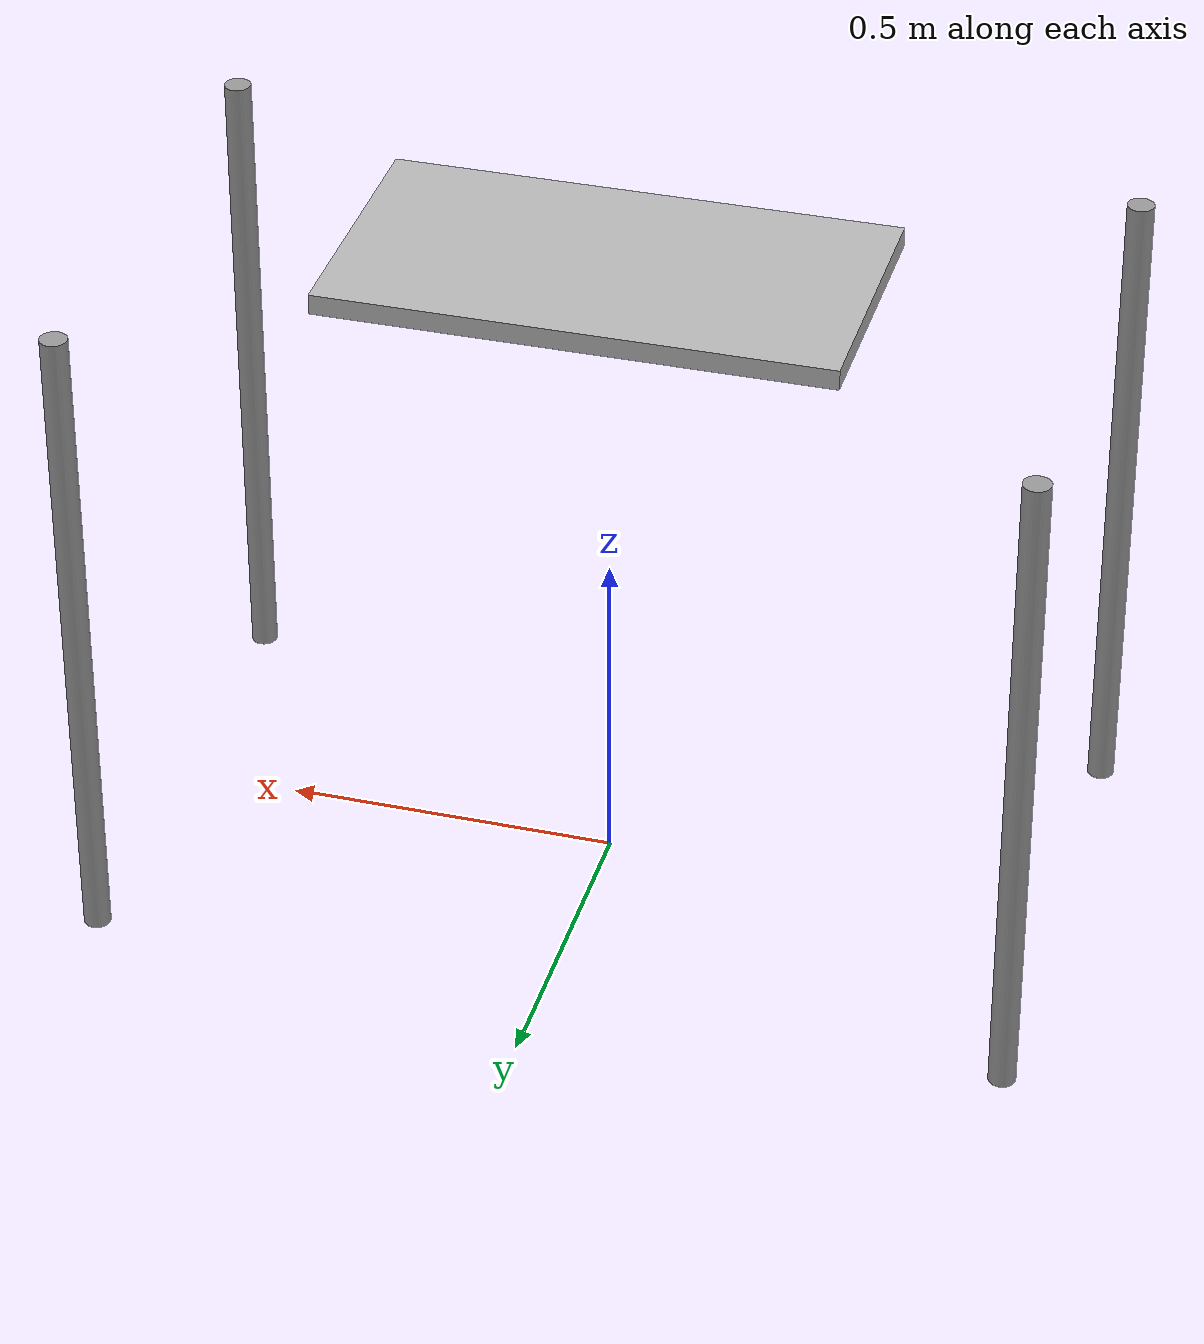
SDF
<?xml version="1.0" ?>
<sdf version="1.3">
  <model name="table">
    <static>true</static>
    <link name="link">
      <collision name="surface">
        <pose>0 0 1.0 0 0 0</pose>
        <geometry>
          <box>
            <size>0.75 0.4 0.03</size>
          </box>
        </geometry>
        <surface>
          <friction>
            <ode>
              <mu>0.6</mu>
              <mu2>0.6</mu2>
            </ode>
          </friction>
        </surface>
      </collision>
      <visual name="visual1">
        <pose>0 0 1.0 0 0 0</pose>
        <geometry>
          <box>
            <size>0.75 0.4 0.03</size>
          </box>
        </geometry>
        <material>
          <script>
            <uri>model://miro_table/materials/scripts</uri>
            <uri>model://miro_table/materials/textures</uri>
            <name>miro_table/Diffuse</name>
          </script>
        </material>
      </visual>
      <collision name="front_left_leg">
        <pose>0.68 0.38 0.5 0 0 0</pose>
        <geometry>
          <cylinder>
            <radius>0.02</radius>
            <length>1.0</length>
          </cylinder>
        </geometry>
      </collision>
      <visual name="front_left_leg">
        <pose>0.68 0.38 0.5 0 0 0</pose>
        <geometry>
          <cylinder>
            <radius>0.02</radius>
            <length>1.0</length>
          </cylinder>
        </geometry>
        <material>
          <script>
            <uri>file://media/materials/scripts/gazebo.material</uri>
            <name>Gazebo/Grey</name>
          </script>
        </material>
      </visual>
      <collision name="front_right_leg">
        <pose>0.68 -0.38 0.5 0 0 0</pose>
        <geometry>
          <cylinder>
            <radius>0.02</radius>
            <length>1.0</length>
          </cylinder>
        </geometry>
      </collision>
      <visual name="front_right_leg">
        <pose>0.68 -0.38 0.5 0 0 0</pose>
        <geometry>
          <cylinder>
            <radius>0.02</radius>
            <length>1.0</length>
          </cylinder>
        </geometry>
        <material>
          <script>
            <uri>file://media/materials/scripts/gazebo.material</uri>
            <name>Gazebo/Grey</name>
          </script>
        </material>
      </visual>
      <collision name="back_right_leg">
        <pose>-0.68 -0.38 0.5 0 0 0</pose>
        <geometry>
          <cylinder>
            <radius>0.02</radius>
            <length>1.0</length>
          </cylinder>
        </geometry>
      </collision>
      <visual name="back_right_leg">
        <pose>-0.68 -0.38 0.5 0 0 0</pose>
        <geometry>
          <cylinder>
            <radius>0.02</radius>
            <length>1.0</length>
          </cylinder>
        </geometry>
        <material>
          <script>
            <uri>file://media/materials/scripts/gazebo.material</uri>
            <name>Gazebo/Grey</name>
          </script>
        </material>
      </visual>
      <collision name="back_left_leg">
        <pose>-0.68 0.38 0.5 0 0 0</pose>
        <geometry>
          <cylinder>
            <radius>0.02</radius>
            <length>1.0</length>
          </cylinder>
        </geometry>
      </collision>
      <visual name="back_left_leg">
        <pose>-0.68 0.38 0.5 0 0 0</pose>
        <geometry>
          <cylinder>
            <radius>0.02</radius>
            <length>1.0</length>
          </cylinder>
        </geometry>
        <material>
          <script>
            <uri>file://media/materials/scripts/gazebo.material</uri>
            <name>Gazebo/Grey</name>
          </script>
        </material>
      </visual>
    </link>
  </model>
</sdf>
